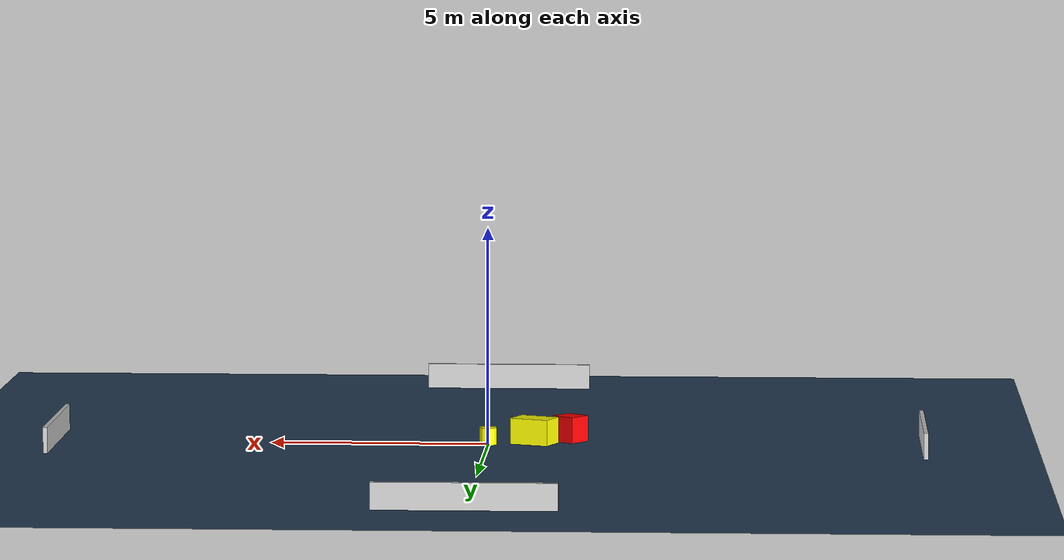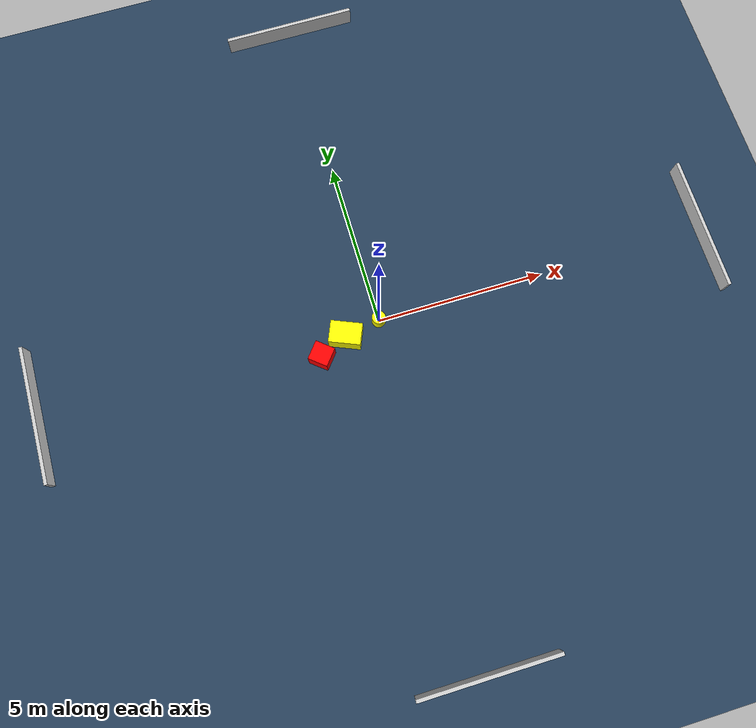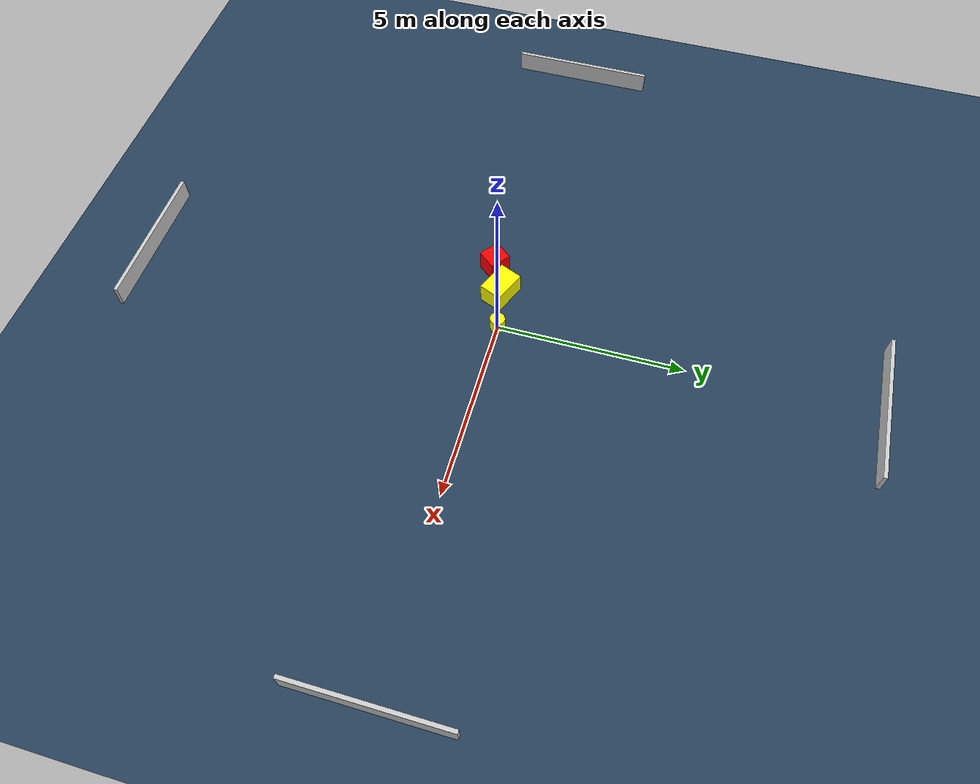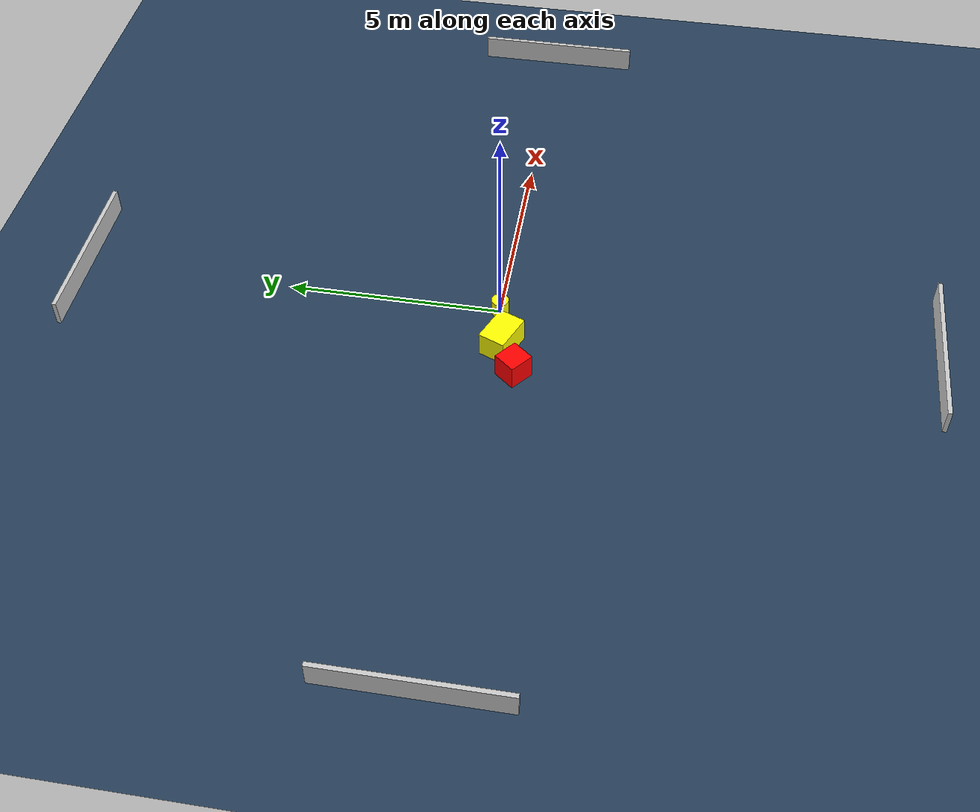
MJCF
<?xml version="1.0" ?>
<mujoco model="generated_environment">
  <option timestep="0.01" integrator="RK4" cone="elliptic"/>
  <default>
    <geom density="1"/>
  </default>
  <asset>
    <texture builtin="gradient" height="3072" name="skybox" rgb1="0.3 0.5 0.7" rgb2="0 0 0" type="skybox" width="512"/>
    <texture builtin="checker" height="300" name="groundplane" rgb1="0.2 0.3 0.4" rgb2="0.1 0.2 0.3" type="2d" width="300"/>
    <material name="groundplane" reflectance="0.2" texrepeat="5 5" texture="groundplane"/>
  </asset>
  <worldbody>
    <light dir="0 0 -1" directional="true" pos="0 0 1.5"/>
    <geom condim="3" friction="0.5 0.005 0.001" material="groundplane" name="floor" pos="0 0 0" size="0 0 0.05" type="plane"/>
    <body name="walls">
      <geom name="wall_1" condim="4" pos="-10.0 0.0 0.3" rgba="0.800000011920929 0.800000011920929 0.800000011920929 1.0" size="0.05 2.0 0.3" type="box"/>
      <geom name="wall_2" condim="4" pos="10.0 0.0 0.3" rgba="0.800000011920929 0.800000011920929 0.800000011920929 1.0" size="0.05 2.0 0.3" type="box"/>
      <geom name="wall_3" condim="4" pos="0.0 -10.0 0.3" rgba="0.800000011920929 0.800000011920929 0.800000011920929 1.0" size="2.0 0.05 0.3" type="box"/>
      <geom name="wall_4" condim="4" pos="0.0 10.0 0.3" rgba="0.800000011920929 0.800000011920929 0.800000011920929 1.0" size="2.0 0.05 0.3" type="box"/>
    </body>
    <body name="robot">
      <joint name="joint_x" type="slide" pos="0 0 0" axis="1 0 0"/>
      <joint name="joint_y" type="slide" pos="0 0 0" axis="0 1 0"/>
      <geom name="robot" type="cylinder" pos="0.0 0.0 0.2" size="0.2 0.2 0.0" mass="5.0" friction="1.0 0.005 0.0001" condim="4" rgba="1.0 1.0 0.0 1.0"/>
    </body>
    <body name="obstacle_1_movable">
      <geom name="obstacle_1_movable" condim="4" pos="-1.0538259142862196 -0.2086145353692724 0.3" euler="0 0 157.49111641665115" friction="0.0 0.005 0.001" rgba="1.0 1.0 0.0 1.0" size="0.4618138187222054 0.32006157133184915 0.3" type="box" mass="0.1"/>
      <joint type="free"/>
    </body>
    <body name="obstacle_2_static">
      <geom name="obstacle_2_static" condim="4" pos="-1.873183625176932 -0.6050480705962605 0.3" euler="0 0 320.9195438853412" friction="0.0 0.005 0.001" rgba="1.0 0.0 0.0 1.0" size="0.2946376568493197 0.2830823766745194 0.3" type="box"/>
    </body>
  </worldbody>
  <actuator>
    <motor name="actuator_x" joint="joint_x" gear="1" ctrlrange="-1 1"/>
    <motor name="actuator_y" joint="joint_y" gear="1" ctrlrange="-1 1"/>
  </actuator>
</mujoco>
